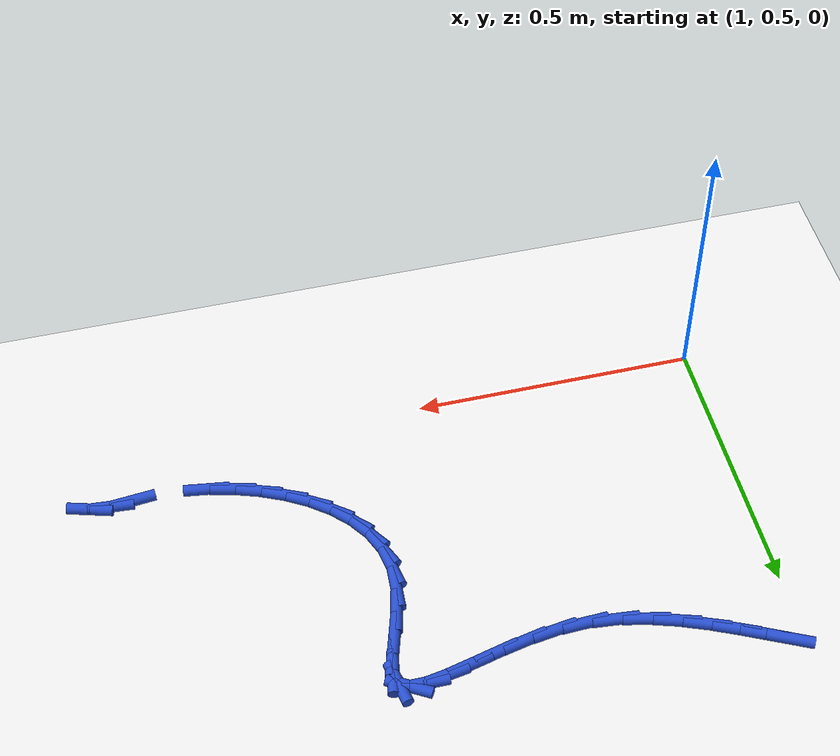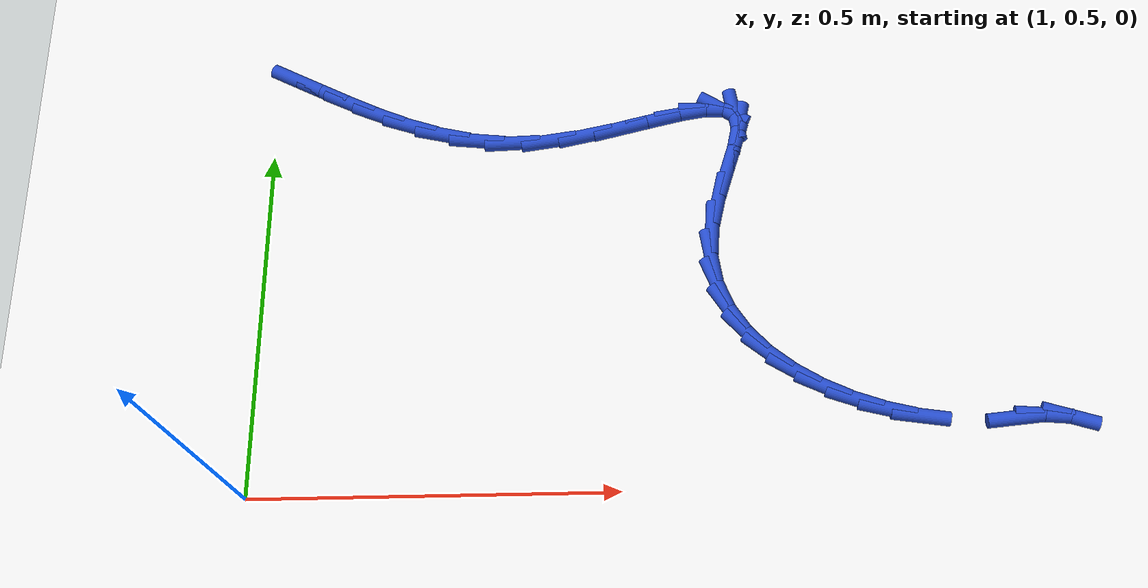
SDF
<sdf version="1.6">
 <world name="default">
  <model name="ground_plane">
   <static>1</static>
   <link name="link">
    <collision name="collision">
     <geometry><plane><normal>0 0 1</normal><size>100 100</size></plane></geometry>
     <surface><friction><ode><mu>100</mu><mu2>50</mu2></ode></friction></surface>
    </collision>
    <visual name="visual">
     <cast_shadows>0</cast_shadows>
     <geometry><plane><normal>0 0 1</normal><size>100 100</size></plane></geometry>
     <material>
      <script><uri>file://media/materials/scripts/gazebo.material</uri><name>Gazebo/WhiteGlow</name></script>
     </material>
    </visual>
   </link>
  </model>
  <model name="line">
   <link name="link_49">
    <pose>1.02756443824062 1.1210934501503305 0.01 0 1.57 -0.456223491454132</pose>
    <collision name="collision">
     <geometry><cylinder><radius>0.01</radius><length>0.08</length></cylinder></geometry>
    </collision>
    <visual name="visual">
     <material>
      <script><name>Gazebo/Blue</name><uri>file://media/materials/scripts/gazebo.material</uri></script>
     </material>
     <geometry><cylinder><radius>0.01</radius><length>0.08</length></cylinder></geometry>
    </visual>
   </link>
   <link name="link_50">
    <pose>1.0658636307746783 1.102297968030906 0.01 0 1.57 -0.45454265264558885</pose>
    <collision name="collision">
     <geometry><cylinder><radius>0.01</radius><length>0.08</length></cylinder></geometry>
    </collision>
    <visual name="visual">
     <material>
      <script><name>Gazebo/Blue</name><uri>file://media/materials/scripts/gazebo.material</uri></script>
     </material>
     <geometry><cylinder><radius>0.01</radius><length>0.08</length></cylinder></geometry>
    </visual>
   </link>
   <link name="link_51">
    <pose>1.106855157441342 1.0822666357955635 0.01 0 1.57 -0.4282073848165518</pose>
    <collision name="collision">
     <geometry><cylinder><radius>0.01</radius><length>0.08</length></cylinder></geometry>
    </collision>
    <visual name="visual">
     <material>
      <script><name>Gazebo/Blue</name><uri>file://media/materials/scripts/gazebo.material</uri></script>
     </material>
     <geometry><cylinder><radius>0.01</radius><length>0.08</length></cylinder></geometry>
    </visual>
   </link>
   <link name="link_52">
    <pose>1.1503307144775 1.0624220811993605 0.01 0 1.57 -0.37927414412389016</pose>
    <collision name="collision">
     <geometry><cylinder><radius>0.01</radius><length>0.08</length></cylinder></geometry>
    </collision>
    <visual name="visual">
     <material>
      <script><name>Gazebo/Blue</name><uri>file://media/materials/scripts/gazebo.material</uri></script>
     </material>
     <geometry><cylinder><radius>0.01</radius><length>0.08</length></cylinder></geometry>
    </visual>
   </link>
   <link name="link_53">
    <pose>1.1960819981200403 1.0441869319973553 0.01 0 1.57 -0.30782627491140113</pose>
    <collision name="collision">
     <geometry><cylinder><radius>0.01</radius><length>0.08</length></cylinder></geometry>
    </collision>
    <visual name="visual">
     <material>
      <script><name>Gazebo/Blue</name><uri>file://media/materials/scripts/gazebo.material</uri></script>
     </material>
     <geometry><cylinder><radius>0.01</radius><length>0.08</length></cylinder></geometry>
    </visual>
   </link>
   <link name="link_54">
    <pose>1.243900704605852 1.0289838159446056 0.01 0 1.57 -0.21307879995680593</pose>
    <collision name="collision">
     <geometry><cylinder><radius>0.01</radius><length>0.08</length></cylinder></geometry>
    </collision>
    <visual name="visual">
     <material>
      <script><name>Gazebo/Blue</name><uri>file://media/materials/scripts/gazebo.material</uri></script>
     </material>
     <geometry><cylinder><radius>0.01</radius><length>0.08</length></cylinder></geometry>
    </visual>
   </link>
   <link name="link_55">
    <pose>1.2935785301718234 1.0182353607961694 0.01 0 1.57 -0.09461815459993521</pose>
    <collision name="collision">
     <geometry><cylinder><radius>0.01</radius><length>0.08</length></cylinder></geometry>
    </collision>
    <visual name="visual">
     <material>
      <script><name>Gazebo/Blue</name><uri>file://media/materials/scripts/gazebo.material</uri></script>
     </material>
     <geometry><cylinder><radius>0.01</radius><length>0.08</length></cylinder></geometry>
    </visual>
   </link>
   <link name="link_56">
    <pose>1.3449071710548441 1.0133641943071048 0.01 0 1.57 0.03990790814757379</pose>
    <collision name="collision">
     <geometry><cylinder><radius>0.01</radius><length>0.08</length></cylinder></geometry>
    </collision>
    <visual name="visual">
     <material>
      <script><name>Gazebo/Blue</name><uri>file://media/materials/scripts/gazebo.material</uri></script>
     </material>
     <geometry><cylinder><radius>0.01</radius><length>0.08</length></cylinder></geometry>
    </visual>
   </link>
   <link name="link_57">
    <pose>1.397547340767767 1.0154660693275792 0.01 0 1.57 0.14602108599088523</pose>
    <collision name="collision">
     <geometry><cylinder><radius>0.01</radius><length>0.08</length></cylinder></geometry>
    </collision>
    <visual name="visual">
     <material>
      <script><name>Gazebo/Blue</name><uri>file://media/materials/scripts/gazebo.material</uri></script>
     </material>
     <geometry><cylinder><radius>0.01</radius><length>0.08</length></cylinder></geometry>
    </visual>
   </link>
   <link name="link_58">
    <pose>1.4501863579885346 1.0232075760343877 0.01 0 1.57 0.21202147658183204</pose>
    <collision name="collision">
     <geometry><cylinder><radius>0.01</radius><length>0.08</length></cylinder></geometry>
    </collision>
    <visual name="visual">
     <material>
      <script><name>Gazebo/Blue</name><uri>file://media/materials/scripts/gazebo.material</uri></script>
     </material>
     <geometry><cylinder><radius>0.01</radius><length>0.08</length></cylinder></geometry>
    </visual>
   </link>
   <link name="link_59">
    <pose>1.5010731603951404 1.03416129966039 0.01 0 1.57 0.24275066964086753</pose>
    <collision name="collision">
     <geometry><cylinder><radius>0.01</radius><length>0.08</length></cylinder></geometry>
    </collision>
    <visual name="visual">
     <material>
      <script><name>Gazebo/Blue</name><uri>file://media/materials/scripts/gazebo.material</uri></script>
     </material>
     <geometry><cylinder><radius>0.01</radius><length>0.08</length></cylinder></geometry>
    </visual>
   </link>
   <link name="link_60">
    <pose>1.5484545723704946 1.045894551589285 0.01 0 1.57 0.23488512355423014</pose>
    <collision name="collision">
     <geometry><cylinder><radius>0.01</radius><length>0.08</length></cylinder></geometry>
    </collision>
    <visual name="visual">
     <material>
      <script><name>Gazebo/Blue</name><uri>file://media/materials/scripts/gazebo.material</uri></script>
     </material>
     <geometry><cylinder><radius>0.01</radius><length>0.08</length></cylinder></geometry>
    </visual>
   </link>
   <link name="link_61">
    <pose>1.5905774182975063 1.0559746432047719 0.01 0 1.57 0.1690919249045621</pose>
    <collision name="collision">
     <geometry><cylinder><radius>0.01</radius><length>0.08</length></cylinder></geometry>
    </collision>
    <visual name="visual">
     <material>
      <script><name>Gazebo/Blue</name><uri>file://media/materials/scripts/gazebo.material</uri></script>
     </material>
     <geometry><cylinder><radius>0.01</radius><length>0.08</length></cylinder></geometry>
    </visual>
   </link>
   <link name="link_62">
    <pose>1.6256885225590854 1.0619688858905487 0.01 0 1.57 -0.019897591515101582</pose>
    <collision name="collision">
     <geometry><cylinder><radius>0.01</radius><length>0.08</length></cylinder></geometry>
    </collision>
    <visual name="visual">
     <material>
      <script><name>Gazebo/Blue</name><uri>file://media/materials/scripts/gazebo.material</uri></script>
     </material>
     <geometry><cylinder><radius>0.01</radius><length>0.08</length></cylinder></geometry>
    </visual>
   </link>
   <link name="link_63">
    <pose>1.6520347095381425 1.061444591030315 0.01 0 1.57 -0.5394277736495552</pose>
    <collision name="collision">
     <geometry><cylinder><radius>0.01</radius><length>0.08</length></cylinder></geometry>
    </collision>
    <visual name="visual">
     <material>
      <script><name>Gazebo/Blue</name><uri>file://media/materials/scripts/gazebo.material</uri></script>
     </material>
     <geometry><cylinder><radius>0.01</radius><length>0.08</length></cylinder></geometry>
    </visual>
   </link>
   <link name="link_64">
    <pose>1.6678628036175867 1.0519690700077695 0.01 0 1.57 -1.3884980067033423</pose>
    <collision name="collision">
     <geometry><cylinder><radius>0.01</radius><length>0.08</length></cylinder></geometry>
    </collision>
    <visual name="visual">
     <material>
      <script><name>Gazebo/Blue</name><uri>file://media/materials/scripts/gazebo.material</uri></script>
     </material>
     <geometry><cylinder><radius>0.01</radius><length>0.08</length></cylinder></geometry>
    </visual>
   </link>
   <link name="link_65">
    <pose>1.6716682652834587 1.0313259135309352 0.01 0 1.57 1.3704632028188735</pose>
    <collision name="collision">
     <geometry><cylinder><radius>0.01</radius><length>0.08</length></cylinder></geometry>
    </collision>
    <visual name="visual">
     <material>
      <script><name>Gazebo/Blue</name><uri>file://media/materials/scripts/gazebo.material</uri></script>
     </material>
     <geometry><cylinder><radius>0.01</radius><length>0.08</length></cylinder></geometry>
    </visual>
   </link>
   <link name="link_66">
    <pose>1.6653621019121887 1.0002697698668617 0.01 0 1.57 1.2684679301327535</pose>
    <collision name="collision">
     <geometry><cylinder><radius>0.01</radius><length>0.08</length></cylinder></geometry>
    </collision>
    <visual name="visual">
     <material>
      <script><name>Gazebo/Blue</name><uri>file://media/materials/scripts/gazebo.material</uri></script>
     </material>
     <geometry><cylinder><radius>0.01</radius><length>0.08</length></cylinder></geometry>
    </visual>
   </link>
   <link name="link_67">
    <pose>1.6533369624415235 0.9617139752339451 0.01 0 1.57 1.2715331208141134</pose>
    <collision name="collision">
     <geometry><cylinder><radius>0.01</radius><length>0.08</length></cylinder></geometry>
    </collision>
    <visual name="visual">
     <material>
      <script><name>Gazebo/Blue</name><uri>file://media/materials/scripts/gazebo.material</uri></script>
     </material>
     <geometry><cylinder><radius>0.01</radius><length>0.08</length></cylinder></geometry>
    </visual>
   </link>
   <link name="link_68">
    <pose>1.6400413564662728 0.9186204569643149 0.01 0 1.57 1.3480554073481932</pose>
    <collision name="collision">
     <geometry><cylinder><radius>0.01</radius><length>0.08</length></cylinder></geometry>
    </collision>
    <visual name="visual">
     <material>
      <script><name>Gazebo/Blue</name><uri>file://media/materials/scripts/gazebo.material</uri></script>
     </material>
     <geometry><cylinder><radius>0.01</radius><length>0.08</length></cylinder></geometry>
    </visual>
   </link>
   <link name="link_69">
    <pose>1.6299237935812438 0.8739511423901012 0.01 0 1.57 1.511319059028461</pose>
    <collision name="collision">
     <geometry><cylinder><radius>0.01</radius><length>0.08</length></cylinder></geometry>
    </collision>
    <visual name="visual">
     <material>
      <script><name>Gazebo/Blue</name><uri>file://media/materials/scripts/gazebo.material</uri></script>
     </material>
     <geometry><cylinder><radius>0.01</radius><length>0.08</length></cylinder></geometry>
    </visual>
   </link>
   <link name="link_70">
    <pose>1.6273436820914073 0.8306225153639418 0.01 0 1.57 -1.4035199156314206</pose>
    <collision name="collision">
     <geometry><cylinder><radius>0.01</radius><length>0.08</length></cylinder></geometry>
    </collision>
    <visual name="visual">
     <material>
      <script><name>Gazebo/Blue</name><uri>file://media/materials/scripts/gazebo.material</uri></script>
     </material>
     <geometry><cylinder><radius>0.01</radius><length>0.08</length></cylinder></geometry>
    </visual>
   </link>
   <link name="link_71">
    <pose>1.6341566851001752 0.790274098496667 0.01 0 1.57 -1.18066678724124</pose>
    <collision name="collision">
     <geometry><cylinder><radius>0.01</radius><length>0.08</length></cylinder></geometry>
    </collision>
    <visual name="visual">
     <material>
      <script><name>Gazebo/Blue</name><uri>file://media/materials/scripts/gazebo.material</uri></script>
     </material>
     <geometry><cylinder><radius>0.01</radius><length>0.08</length></cylinder></geometry>
    </visual>
   </link>
   <link name="link_72">
    <pose>1.649432772611692 0.7531246539650479 0.01 0 1.57 -0.9802156688617786</pose>
    <collision name="collision">
     <geometry><cylinder><radius>0.01</radius><length>0.08</length></cylinder></geometry>
    </collision>
    <visual name="visual">
     <material>
      <script><name>Gazebo/Blue</name><uri>file://media/materials/scripts/gazebo.material</uri></script>
     </material>
     <geometry><cylinder><radius>0.01</radius><length>0.08</length></cylinder></geometry>
    </visual>
   </link>
   <link name="link_73">
    <pose>1.6720962223998974 0.7193186379297771 0.01 0 1.57 -0.8080451354325076</pose>
    <collision name="collision">
     <geometry><cylinder><radius>0.01</radius><length>0.08</length></cylinder></geometry>
    </collision>
    <visual name="visual">
     <material>
      <script><name>Gazebo/Blue</name><uri>file://media/materials/scripts/gazebo.material</uri></script>
     </material>
     <geometry><cylinder><radius>0.01</radius><length>0.08</length></cylinder></geometry>
    </visual>
   </link>
   <link name="link_74">
    <pose>1.701071312238731 0.6890005065515475 0.01 0 1.57 -0.6624481850245808</pose>
    <collision name="collision">
     <geometry><cylinder><radius>0.01</radius><length>0.08</length></cylinder></geometry>
    </collision>
    <visual name="visual">
     <material>
      <script><name>Gazebo/Blue</name><uri>file://media/materials/scripts/gazebo.material</uri></script>
     </material>
     <geometry><cylinder><radius>0.01</radius><length>0.08</length></cylinder></geometry>
    </visual>
   </link>
   <link name="link_75">
    <pose>1.735282319902133 0.6623147159910514 0.01 0 1.57 -0.5382373127173165</pose>
    <collision name="collision">
     <geometry><cylinder><radius>0.01</radius><length>0.08</length></cylinder></geometry>
    </collision>
    <visual name="visual">
     <material>
      <script><name>Gazebo/Blue</name><uri>file://media/materials/scripts/gazebo.material</uri></script>
     </material>
     <geometry><cylinder><radius>0.01</radius><length>0.08</length></cylinder></geometry>
    </visual>
   </link>
   <link name="link_76">
    <pose>1.7736535231640427 0.639405722408982 0.01 0 1.57 -0.4295075258254783</pose>
    <collision name="collision">
     <geometry><cylinder><radius>0.01</radius><length>0.08</length></cylinder></geometry>
    </collision>
    <visual name="visual">
     <material>
      <script><name>Gazebo/Blue</name><uri>file://media/materials/scripts/gazebo.material</uri></script>
     </material>
     <geometry><cylinder><radius>0.01</radius><length>0.08</length></cylinder></geometry>
    </visual>
   </link>
   <link name="link_77">
    <pose>1.8151091997984001 0.6204179819660315 0.01 0 1.57 -0.3307078404261728</pose>
    <collision name="collision">
     <geometry><cylinder><radius>0.01</radius><length>0.08</length></cylinder></geometry>
    </collision>
    <visual name="visual">
     <material>
      <script><name>Gazebo/Blue</name><uri>file://media/materials/scripts/gazebo.material</uri></script>
     </material>
     <geometry><cylinder><radius>0.01</radius><length>0.08</length></cylinder></geometry>
    </visual>
   </link>
   <link name="link_78">
    <pose>1.8585736275791451 0.6054959508228928 0.01 0 1.57 -0.23674740963121657</pose>
    <collision name="collision">
     <geometry><cylinder><radius>0.01</radius><length>0.08</length></cylinder></geometry>
    </collision>
    <visual name="visual">
     <material>
      <script><name>Gazebo/Blue</name><uri>file://media/materials/scripts/gazebo.material</uri></script>
     </material>
     <geometry><cylinder><radius>0.01</radius><length>0.08</length></cylinder></geometry>
    </visual>
   </link>
   <link name="link_79">
    <pose>1.902971084280217 0.5947840851402583 0.01 0 1.57 -0.1426750154057019</pose>
    <collision name="collision">
     <geometry><cylinder><radius>0.01</radius><length>0.08</length></cylinder></geometry>
    </collision>
    <visual name="visual">
     <material>
      <script><name>Gazebo/Blue</name><uri>file://media/materials/scripts/gazebo.material</uri></script>
     </material>
     <geometry><cylinder><radius>0.01</radius><length>0.08</length></cylinder></geometry>
    </visual>
   </link>
   <link name="link_82">
    <pose>2.0310119199117063 0.5893064570310186 0.01 0 1.57 0.09629151195257446</pose>
    <collision name="collision">
     <geometry><cylinder><radius>0.01</radius><length>0.08</length></cylinder></geometry>
    </collision>
    <visual name="visual">
     <material>
      <script><name>Gazebo/Blue</name><uri>file://media/materials/scripts/gazebo.material</uri></script>
     </material>
     <geometry><cylinder><radius>0.01</radius><length>0.08</length></cylinder></geometry>
    </visual>
   </link>
   <link name="link_83">
    <pose>2.069001131467258 0.5929758435843413 0.01 0 1.57 -0.07867703701121488</pose>
    <collision name="collision">
     <geometry><cylinder><radius>0.01</radius><length>0.08</length></cylinder></geometry>
    </collision>
    <visual name="visual">
     <material>
      <script><name>Gazebo/Blue</name><uri>file://media/materials/scripts/gazebo.material</uri></script>
     </material>
     <geometry><cylinder><radius>0.01</radius><length>0.08</length></cylinder></geometry>
    </visual>
   </link>
   <link name="link_84">
    <pose>2.1046172111231307 0.5901678797380177 0.01 0 1.57 -0.2897224624959884</pose>
    <collision name="collision">
     <geometry><cylinder><radius>0.01</radius><length>0.08</length></cylinder></geometry>
    </collision>
    <visual name="visual">
     <material>
      <script><name>Gazebo/Blue</name><uri>file://media/materials/scripts/gazebo.material</uri></script>
     </material>
     <geometry><cylinder><radius>0.01</radius><length>0.08</length></cylinder></geometry>
    </visual>
   </link>
  </model>
 </world>
</sdf>
